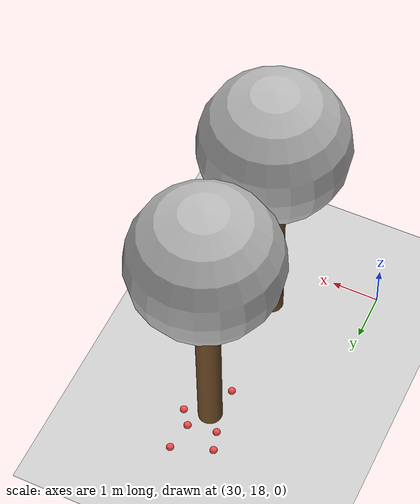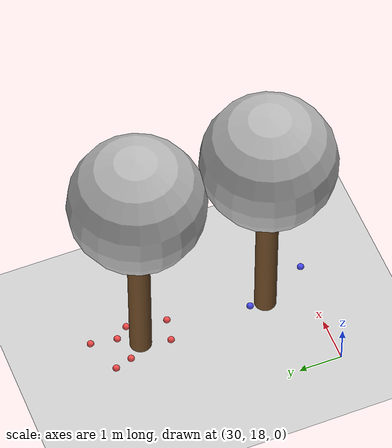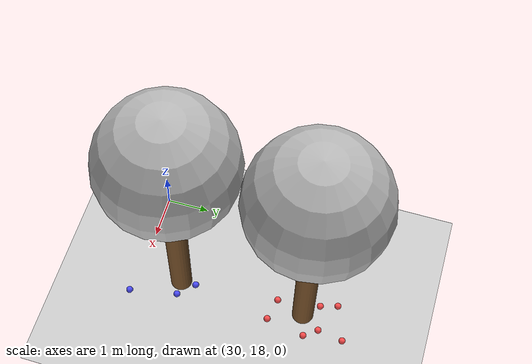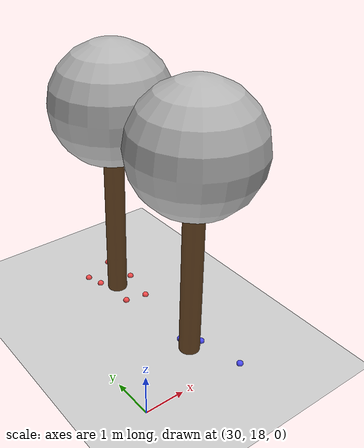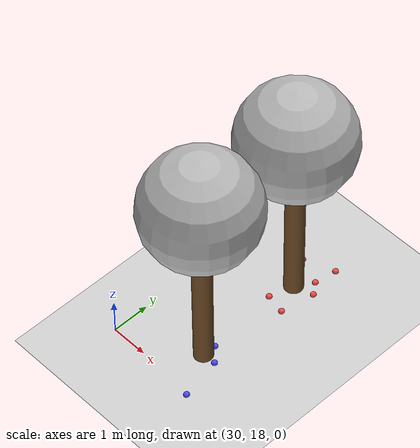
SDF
<sdf version="1.7">
 <world name="default">
  <model name="ground_plane">
   <static>1</static>
   <link name="link">
    <collision name="collision">
     <geometry><plane><normal>0 0 1</normal><size>100 100</size></plane></geometry>
     <surface>
      <contact><collide_bitmask>65535</collide_bitmask></contact>
      <friction><ode><mu>100</mu><mu2>50</mu2></ode></friction>
     </surface>
    </collision>
    <visual name="visual">
     <cast_shadows>0</cast_shadows>
     <geometry><plane><normal>0 0 1</normal><size>100 100</size></plane></geometry>
     <material>
      <script><uri>file://media/materials/scripts/gazebo.material</uri><name>Gazebo/Grey</name></script>
     </material>
    </visual>
   </link>
  </model>
  <model name="tree_simple_44">
   <static>1</static>
   <link name="link">
    <pose>0 0 0.1 0 -0 0</pose>
    <inertial>
     <mass>666</mass>
     <inertia>
      <ixx>0.0861167</ixx>
      <ixy>0</ixy>
      <ixz>0</ixz>
      <iyy>0.0861167</iyy>
      <iyz>0</iyz>
      <izz>0.0861167</izz>
     </inertia>
    </inertial>
    <collision name="collision_trunk">
     <pose>0 0 2 0 -0 0</pose>
     <geometry><cylinder><radius>0.25</radius><length>4</length></cylinder></geometry>
     <surface>
      <contact>
       <poissons_ratio>0.347</poissons_ratio>
       <elastic_modulus>8.8e+09</elastic_modulus>
       <ode><kp>100000</kp><kd>100</kd><max_vel>100</max_vel><min_depth>0.001</min_depth></ode>
      </contact>
      <friction>
       <torsional>
        <coefficient>1</coefficient>
        <use_patch_radius>0</use_patch_radius>
        <surface_radius>0.01</surface_radius>
       </torsional>
      </friction>
     </surface>
    </collision>
    <collision name="collision_treetop">
     <pose>0 0 5.2 0 -0 0</pose>
     <geometry><sphere><radius>1.5</radius></sphere></geometry>
     <surface>
      <contact>
       <poissons_ratio>0.347</poissons_ratio>
       <elastic_modulus>8.8e+09</elastic_modulus>
       <ode><kp>100000</kp><kd>100</kd><max_vel>100</max_vel><min_depth>0.001</min_depth></ode>
      </contact>
      <friction>
       <torsional>
        <coefficient>1</coefficient>
        <use_patch_radius>0</use_patch_radius>
        <surface_radius>0.01</surface_radius>
       </torsional>
      </friction>
     </surface>
    </collision>
    <visual name="trunk">
     <pose>0 0 2 0 -0 0</pose>
     <geometry><cylinder><radius>0.25</radius><length>4</length></cylinder></geometry>
     <material>
      <script>
       <uri>model://tree_simple/scripts</uri>
       <uri>model://tree_simple/materials/textures</uri>
       <name>TreeSimple/Trunk</name>
      </script>
     </material>
    </visual>
    <visual name="treetop">
     <pose>0 0 5.2 0 -0 0</pose>
     <geometry><sphere><radius>1.5</radius></sphere></geometry>
     <material>
      <script>
       <uri>model://tree_simple/scripts</uri>
       <uri>model://tree_simple/materials/textures</uri>
       <name>TreeSimple/Treetop</name>
      </script>
     </material>
    </visual>
   </link>
   <pose>32 22 -0.1 0 -0 0</pose>
  </model>
  <model name="tree_simple_53">
   <static>1</static>
   <link name="link">
    <pose>0 0 0.1 0 -0 0</pose>
    <inertial>
     <mass>666</mass>
     <inertia>
      <ixx>0.0861167</ixx>
      <ixy>0</ixy>
      <ixz>0</ixz>
      <iyy>0.0861167</iyy>
      <iyz>0</iyz>
      <izz>0.0861167</izz>
     </inertia>
    </inertial>
    <collision name="collision_trunk">
     <pose>0 0 2 0 -0 0</pose>
     <geometry><cylinder><radius>0.25</radius><length>4</length></cylinder></geometry>
     <surface>
      <contact>
       <poissons_ratio>0.347</poissons_ratio>
       <elastic_modulus>8.8e+09</elastic_modulus>
       <ode><kp>100000</kp><kd>100</kd><max_vel>100</max_vel><min_depth>0.001</min_depth></ode>
      </contact>
      <friction>
       <torsional>
        <coefficient>1</coefficient>
        <use_patch_radius>0</use_patch_radius>
        <surface_radius>0.01</surface_radius>
       </torsional>
      </friction>
     </surface>
    </collision>
    <collision name="collision_treetop">
     <pose>0 0 5.2 0 -0 0</pose>
     <geometry><sphere><radius>1.5</radius></sphere></geometry>
     <surface>
      <contact>
       <poissons_ratio>0.347</poissons_ratio>
       <elastic_modulus>8.8e+09</elastic_modulus>
       <ode><kp>100000</kp><kd>100</kd><max_vel>100</max_vel><min_depth>0.001</min_depth></ode>
      </contact>
      <friction>
       <torsional>
        <coefficient>1</coefficient>
        <use_patch_radius>0</use_patch_radius>
        <surface_radius>0.01</surface_radius>
       </torsional>
      </friction>
     </surface>
    </collision>
    <visual name="trunk">
     <pose>0 0 2 0 -0 0</pose>
     <geometry><cylinder><radius>0.25</radius><length>4</length></cylinder></geometry>
     <material>
      <script>
       <uri>model://tree_simple/scripts</uri>
       <uri>model://tree_simple/materials/textures</uri>
       <name>TreeSimple/Trunk</name>
      </script>
     </material>
    </visual>
    <visual name="treetop">
     <pose>0 0 5.2 0 -0 0</pose>
     <geometry><sphere><radius>1.5</radius></sphere></geometry>
     <material>
      <script>
       <uri>model://tree_simple/scripts</uri>
       <uri>model://tree_simple/materials/textures</uri>
       <name>TreeSimple/Treetop</name>
      </script>
     </material>
    </visual>
   </link>
   <pose>32 19 -0.1 0 -0 0</pose>
  </model>
  <model name="seed_red_203">
   <link name="link">
    <inertial>
     <mass>1</mass>
     <inertia><ixx>0.1</ixx><ixy>0</ixy><ixz>0</ixz><iyy>0.1</iyy><iyz>0</iyz><izz>0.1</izz></inertia>
    </inertial>
    <visual name="visual">
     <geometry><sphere><radius>0.08</radius></sphere></geometry>
     <material>
      <script><name>Gazebo/Grey</name><uri>file://media/materials/scripts/gazebo.material</uri></script>
      <shader type="pixel"><normal_map>__default__</normal_map></shader>
      <ambient>1 0.3 0.3 1</ambient>
      <diffuse>0.7 0.7 0.7 1</diffuse>
      <specular>0.01 0.01 0.01 1</specular>
      <emissive>0 0 0 1</emissive>
     </material>
    </visual>
    <collision name="collision">
     <geometry><sphere><radius>0.0005</radius></sphere></geometry>
     <surface>
      <friction>
       <ode><mu>1</mu><mu2>1</mu2><fdir1>0 0 0</fdir1><slip1>0</slip1><slip2>0</slip2></ode>
       <torsional>
        <coefficient>1</coefficient>
        <patch_radius>0</patch_radius>
        <surface_radius>0</surface_radius>
        <use_patch_radius>1</use_patch_radius>
        <ode><slip>0</slip></ode>
       </torsional>
      </friction>
      <bounce><restitution_coefficient>0</restitution_coefficient><threshold>1e+06</threshold></bounce>
      <contact>
       <collide_without_contact>0</collide_without_contact>
       <collide_without_contact_bitmask>1</collide_without_contact_bitmask>
       <collide_bitmask>1</collide_bitmask>
       <ode>
        <soft_cfm>0</soft_cfm>
        <soft_erp>0.2</soft_erp>
        <kp>1e+13</kp>
        <kd>1</kd>
        <max_vel>0.01</max_vel>
        <min_depth>0</min_depth>
       </ode>
       <bullet>
        <split_impulse>1</split_impulse>
        <split_impulse_penetration_threshold>-0.01</split_impulse_penetration_threshold>
        <soft_cfm>0</soft_cfm>
        <soft_erp>0.2</soft_erp>
        <kp>1e+13</kp>
        <kd>1</kd>
       </bullet>
      </contact>
     </surface>
    </collision>
   </link>
   <static>0</static>
   <pose>32.5246 22.1465 0.0005 0 -0 0</pose>
  </model>
  <model name="seed_red_204">
   <link name="link">
    <inertial>
     <mass>1</mass>
     <inertia><ixx>0.1</ixx><ixy>0</ixy><ixz>0</ixz><iyy>0.1</iyy><iyz>0</iyz><izz>0.1</izz></inertia>
    </inertial>
    <visual name="visual">
     <geometry><sphere><radius>0.08</radius></sphere></geometry>
     <material>
      <script><name>Gazebo/Grey</name><uri>file://media/materials/scripts/gazebo.material</uri></script>
      <shader type="pixel"><normal_map>__default__</normal_map></shader>
      <ambient>1 0.3 0.3 1</ambient>
      <diffuse>0.7 0.7 0.7 1</diffuse>
      <specular>0.01 0.01 0.01 1</specular>
      <emissive>0 0 0 1</emissive>
     </material>
    </visual>
    <collision name="collision">
     <geometry><sphere><radius>0.0005</radius></sphere></geometry>
     <surface>
      <friction>
       <ode><mu>1</mu><mu2>1</mu2><fdir1>0 0 0</fdir1><slip1>0</slip1><slip2>0</slip2></ode>
       <torsional>
        <coefficient>1</coefficient>
        <patch_radius>0</patch_radius>
        <surface_radius>0</surface_radius>
        <use_patch_radius>1</use_patch_radius>
        <ode><slip>0</slip></ode>
       </torsional>
      </friction>
      <bounce><restitution_coefficient>0</restitution_coefficient><threshold>1e+06</threshold></bounce>
      <contact>
       <collide_without_contact>0</collide_without_contact>
       <collide_without_contact_bitmask>1</collide_without_contact_bitmask>
       <collide_bitmask>1</collide_bitmask>
       <ode>
        <soft_cfm>0</soft_cfm>
        <soft_erp>0.2</soft_erp>
        <kp>1e+13</kp>
        <kd>1</kd>
        <max_vel>0.01</max_vel>
        <min_depth>0</min_depth>
       </ode>
       <bullet>
        <split_impulse>1</split_impulse>
        <split_impulse_penetration_threshold>-0.01</split_impulse_penetration_threshold>
        <soft_cfm>0</soft_cfm>
        <soft_erp>0.2</soft_erp>
        <kp>1e+13</kp>
        <kd>1</kd>
       </bullet>
      </contact>
     </surface>
    </collision>
   </link>
   <static>0</static>
   <pose>31.5701 22.747 0.0005 0 -0 0</pose>
  </model>
  <model name="seed_red_205">
   <link name="link">
    <inertial>
     <mass>1</mass>
     <inertia><ixx>0.1</ixx><ixy>0</ixy><ixz>0</ixz><iyy>0.1</iyy><iyz>0</iyz><izz>0.1</izz></inertia>
    </inertial>
    <visual name="visual">
     <geometry><sphere><radius>0.08</radius></sphere></geometry>
     <material>
      <script><name>Gazebo/Grey</name><uri>file://media/materials/scripts/gazebo.material</uri></script>
      <shader type="pixel"><normal_map>__default__</normal_map></shader>
      <ambient>1 0.3 0.3 1</ambient>
      <diffuse>0.7 0.7 0.7 1</diffuse>
      <specular>0.01 0.01 0.01 1</specular>
      <emissive>0 0 0 1</emissive>
     </material>
    </visual>
    <collision name="collision">
     <geometry><sphere><radius>0.0005</radius></sphere></geometry>
     <surface>
      <friction>
       <ode><mu>1</mu><mu2>1</mu2><fdir1>0 0 0</fdir1><slip1>0</slip1><slip2>0</slip2></ode>
       <torsional>
        <coefficient>1</coefficient>
        <patch_radius>0</patch_radius>
        <surface_radius>0</surface_radius>
        <use_patch_radius>1</use_patch_radius>
        <ode><slip>0</slip></ode>
       </torsional>
      </friction>
      <bounce><restitution_coefficient>0</restitution_coefficient><threshold>1e+06</threshold></bounce>
      <contact>
       <collide_without_contact>0</collide_without_contact>
       <collide_without_contact_bitmask>1</collide_without_contact_bitmask>
       <collide_bitmask>1</collide_bitmask>
       <ode>
        <soft_cfm>0</soft_cfm>
        <soft_erp>0.2</soft_erp>
        <kp>1e+13</kp>
        <kd>1</kd>
        <max_vel>0.01</max_vel>
        <min_depth>0</min_depth>
       </ode>
       <bullet>
        <split_impulse>1</split_impulse>
        <split_impulse_penetration_threshold>-0.01</split_impulse_penetration_threshold>
        <soft_cfm>0</soft_cfm>
        <soft_erp>0.2</soft_erp>
        <kp>1e+13</kp>
        <kd>1</kd>
       </bullet>
      </contact>
     </surface>
    </collision>
   </link>
   <static>0</static>
   <pose>31.6913 22.3485 0.0005 0 -0 0</pose>
  </model>
  <model name="seed_red_206">
   <link name="link">
    <inertial>
     <mass>1</mass>
     <inertia><ixx>0.1</ixx><ixy>0</ixy><ixz>0</ixz><iyy>0.1</iyy><iyz>0</iyz><izz>0.1</izz></inertia>
    </inertial>
    <visual name="visual">
     <geometry><sphere><radius>0.08</radius></sphere></geometry>
     <material>
      <script><name>Gazebo/Grey</name><uri>file://media/materials/scripts/gazebo.material</uri></script>
      <shader type="pixel"><normal_map>__default__</normal_map></shader>
      <ambient>1 0.3 0.3 1</ambient>
      <diffuse>0.7 0.7 0.7 1</diffuse>
      <specular>0.01 0.01 0.01 1</specular>
      <emissive>0 0 0 1</emissive>
     </material>
    </visual>
    <collision name="collision">
     <geometry><sphere><radius>0.0005</radius></sphere></geometry>
     <surface>
      <friction>
       <ode><mu>1</mu><mu2>1</mu2><fdir1>0 0 0</fdir1><slip1>0</slip1><slip2>0</slip2></ode>
       <torsional>
        <coefficient>1</coefficient>
        <patch_radius>0</patch_radius>
        <surface_radius>0</surface_radius>
        <use_patch_radius>1</use_patch_radius>
        <ode><slip>0</slip></ode>
       </torsional>
      </friction>
      <bounce><restitution_coefficient>0</restitution_coefficient><threshold>1e+06</threshold></bounce>
      <contact>
       <collide_without_contact>0</collide_without_contact>
       <collide_without_contact_bitmask>1</collide_without_contact_bitmask>
       <collide_bitmask>1</collide_bitmask>
       <ode>
        <soft_cfm>0</soft_cfm>
        <soft_erp>0.2</soft_erp>
        <kp>1e+13</kp>
        <kd>1</kd>
        <max_vel>0.01</max_vel>
        <min_depth>0</min_depth>
       </ode>
       <bullet>
        <split_impulse>1</split_impulse>
        <split_impulse_penetration_threshold>-0.01</split_impulse_penetration_threshold>
        <soft_cfm>0</soft_cfm>
        <soft_erp>0.2</soft_erp>
        <kp>1e+13</kp>
        <kd>1</kd>
       </bullet>
      </contact>
     </surface>
    </collision>
   </link>
   <static>0</static>
   <pose>32.3896 23.0486 0.0005 0 -0 0</pose>
  </model>
  <model name="seed_red_207">
   <link name="link">
    <inertial>
     <mass>1</mass>
     <inertia><ixx>0.1</ixx><ixy>0</ixy><ixz>0</ixz><iyy>0.1</iyy><iyz>0</iyz><izz>0.1</izz></inertia>
    </inertial>
    <visual name="visual">
     <geometry><sphere><radius>0.08</radius></sphere></geometry>
     <material>
      <script><name>Gazebo/Grey</name><uri>file://media/materials/scripts/gazebo.material</uri></script>
      <shader type="pixel"><normal_map>__default__</normal_map></shader>
      <ambient>1 0.3 0.3 1</ambient>
      <diffuse>0.7 0.7 0.7 1</diffuse>
      <specular>0.01 0.01 0.01 1</specular>
      <emissive>0 0 0 1</emissive>
     </material>
    </visual>
    <collision name="collision">
     <geometry><sphere><radius>0.0005</radius></sphere></geometry>
     <surface>
      <friction>
       <ode><mu>1</mu><mu2>1</mu2><fdir1>0 0 0</fdir1><slip1>0</slip1><slip2>0</slip2></ode>
       <torsional>
        <coefficient>1</coefficient>
        <patch_radius>0</patch_radius>
        <surface_radius>0</surface_radius>
        <use_patch_radius>1</use_patch_radius>
        <ode><slip>0</slip></ode>
       </torsional>
      </friction>
      <bounce><restitution_coefficient>0</restitution_coefficient><threshold>1e+06</threshold></bounce>
      <contact>
       <collide_without_contact>0</collide_without_contact>
       <collide_without_contact_bitmask>1</collide_without_contact_bitmask>
       <collide_bitmask>1</collide_bitmask>
       <ode>
        <soft_cfm>0</soft_cfm>
        <soft_erp>0.2</soft_erp>
        <kp>1e+13</kp>
        <kd>1</kd>
        <max_vel>0.01</max_vel>
        <min_depth>0</min_depth>
       </ode>
       <bullet>
        <split_impulse>1</split_impulse>
        <split_impulse_penetration_threshold>-0.01</split_impulse_penetration_threshold>
        <soft_cfm>0</soft_cfm>
        <soft_erp>0.2</soft_erp>
        <kp>1e+13</kp>
        <kd>1</kd>
       </bullet>
      </contact>
     </surface>
    </collision>
   </link>
   <static>0</static>
   <pose>31.8261 21.3424 0.0005 0 -0 0</pose>
  </model>
  <model name="seed_red_208">
   <link name="link">
    <inertial>
     <mass>1</mass>
     <inertia><ixx>0.1</ixx><ixy>0</ixy><ixz>0</ixz><iyy>0.1</iyy><iyz>0</iyz><izz>0.1</izz></inertia>
    </inertial>
    <visual name="visual">
     <geometry><sphere><radius>0.08</radius></sphere></geometry>
     <material>
      <script><name>Gazebo/Grey</name><uri>file://media/materials/scripts/gazebo.material</uri></script>
      <shader type="pixel"><normal_map>__default__</normal_map></shader>
      <ambient>1 0.3 0.3 1</ambient>
      <diffuse>0.7 0.7 0.7 1</diffuse>
      <specular>0.01 0.01 0.01 1</specular>
      <emissive>0 0 0 1</emissive>
     </material>
    </visual>
    <collision name="collision">
     <geometry><sphere><radius>0.0005</radius></sphere></geometry>
     <surface>
      <friction>
       <ode><mu>1</mu><mu2>1</mu2><fdir1>0 0 0</fdir1><slip1>0</slip1><slip2>0</slip2></ode>
       <torsional>
        <coefficient>1</coefficient>
        <patch_radius>0</patch_radius>
        <surface_radius>0</surface_radius>
        <use_patch_radius>1</use_patch_radius>
        <ode><slip>0</slip></ode>
       </torsional>
      </friction>
      <bounce><restitution_coefficient>0</restitution_coefficient><threshold>1e+06</threshold></bounce>
      <contact>
       <collide_without_contact>0</collide_without_contact>
       <collide_without_contact_bitmask>1</collide_without_contact_bitmask>
       <collide_bitmask>1</collide_bitmask>
       <ode>
        <soft_cfm>0</soft_cfm>
        <soft_erp>0.2</soft_erp>
        <kp>1e+13</kp>
        <kd>1</kd>
        <max_vel>0.01</max_vel>
        <min_depth>0</min_depth>
       </ode>
       <bullet>
        <split_impulse>1</split_impulse>
        <split_impulse_penetration_threshold>-0.01</split_impulse_penetration_threshold>
        <soft_cfm>0</soft_cfm>
        <soft_erp>0.2</soft_erp>
        <kp>1e+13</kp>
        <kd>1</kd>
       </bullet>
      </contact>
     </surface>
    </collision>
   </link>
   <static>0</static>
   <pose>32.2938 22.448 0.0005 0 -0 0</pose>
  </model>
  <model name="seed_red_209">
   <link name="link">
    <inertial>
     <mass>1</mass>
     <inertia><ixx>0.1</ixx><ixy>0</ixy><ixz>0</ixz><iyy>0.1</iyy><iyz>0</iyz><izz>0.1</izz></inertia>
    </inertial>
    <visual name="visual">
     <geometry><sphere><radius>0.08</radius></sphere></geometry>
     <material>
      <script><name>Gazebo/Grey</name><uri>file://media/materials/scripts/gazebo.material</uri></script>
      <shader type="pixel"><normal_map>__default__</normal_map></shader>
      <ambient>1 0.3 0.3 1</ambient>
      <diffuse>0.7 0.7 0.7 1</diffuse>
      <specular>0.01 0.01 0.01 1</specular>
      <emissive>0 0 0 1</emissive>
     </material>
    </visual>
    <collision name="collision">
     <geometry><sphere><radius>0.0005</radius></sphere></geometry>
     <surface>
      <friction>
       <ode><mu>1</mu><mu2>1</mu2><fdir1>0 0 0</fdir1><slip1>0</slip1><slip2>0</slip2></ode>
       <torsional>
        <coefficient>1</coefficient>
        <patch_radius>0</patch_radius>
        <surface_radius>0</surface_radius>
        <use_patch_radius>1</use_patch_radius>
        <ode><slip>0</slip></ode>
       </torsional>
      </friction>
      <bounce><restitution_coefficient>0</restitution_coefficient><threshold>1e+06</threshold></bounce>
      <contact>
       <collide_without_contact>0</collide_without_contact>
       <collide_without_contact_bitmask>1</collide_without_contact_bitmask>
       <collide_bitmask>1</collide_bitmask>
       <ode>
        <soft_cfm>0</soft_cfm>
        <soft_erp>0.2</soft_erp>
        <kp>1e+13</kp>
        <kd>1</kd>
        <max_vel>0.01</max_vel>
        <min_depth>0</min_depth>
       </ode>
       <bullet>
        <split_impulse>1</split_impulse>
        <split_impulse_penetration_threshold>-0.01</split_impulse_penetration_threshold>
        <soft_cfm>0</soft_cfm>
        <soft_erp>0.2</soft_erp>
        <kp>1e+13</kp>
        <kd>1</kd>
       </bullet>
      </contact>
     </surface>
    </collision>
   </link>
   <static>0</static>
   <pose>32.3591 21.2338 0.0005 0 -0 0</pose>
  </model>
  <model name="seed_blue_110">
   <link name="link">
    <inertial>
     <mass>1</mass>
     <inertia><ixx>0.1</ixx><ixy>0</ixy><ixz>0</ixz><iyy>0.1</iyy><iyz>0</iyz><izz>0.1</izz></inertia>
    </inertial>
    <visual name="visual">
     <geometry><sphere><radius>0.08</radius></sphere></geometry>
     <material>
      <script><name>Gazebo/Grey</name><uri>file://media/materials/scripts/gazebo.material</uri></script>
      <shader type="pixel"><normal_map>__default__</normal_map></shader>
      <ambient>0.3 0.3 1 1</ambient>
      <diffuse>0.7 0.7 0.7 1</diffuse>
      <specular>0.01 0.01 0.01 1</specular>
      <emissive>0 0 0 1</emissive>
     </material>
    </visual>
    <collision name="collision">
     <geometry><sphere><radius>0.0005</radius></sphere></geometry>
     <surface>
      <friction>
       <ode><mu>1</mu><mu2>1</mu2><fdir1>0 0 0</fdir1><slip1>0</slip1><slip2>0</slip2></ode>
       <torsional>
        <coefficient>1</coefficient>
        <patch_radius>0</patch_radius>
        <surface_radius>0</surface_radius>
        <use_patch_radius>1</use_patch_radius>
        <ode><slip>0</slip></ode>
       </torsional>
      </friction>
      <bounce><restitution_coefficient>0</restitution_coefficient><threshold>1e+06</threshold></bounce>
      <contact>
       <collide_without_contact>0</collide_without_contact>
       <collide_without_contact_bitmask>1</collide_without_contact_bitmask>
       <collide_bitmask>1</collide_bitmask>
       <ode>
        <soft_cfm>0</soft_cfm>
        <soft_erp>0.2</soft_erp>
        <kp>1e+13</kp>
        <kd>1</kd>
        <max_vel>0.01</max_vel>
        <min_depth>0</min_depth>
       </ode>
       <bullet>
        <split_impulse>1</split_impulse>
        <split_impulse_penetration_threshold>-0.01</split_impulse_penetration_threshold>
        <soft_cfm>0</soft_cfm>
        <soft_erp>0.2</soft_erp>
        <kp>1e+13</kp>
        <kd>1</kd>
       </bullet>
      </contact>
     </surface>
    </collision>
   </link>
   <static>0</static>
   <pose>32.0164 19.3576 0.0005 0 -0 0</pose>
  </model>
  <model name="seed_blue_113">
   <link name="link">
    <inertial>
     <mass>1</mass>
     <inertia><ixx>0.1</ixx><ixy>0</ixy><ixz>0</ixz><iyy>0.1</iyy><iyz>0</iyz><izz>0.1</izz></inertia>
    </inertial>
    <visual name="visual">
     <geometry><sphere><radius>0.08</radius></sphere></geometry>
     <material>
      <script><name>Gazebo/Grey</name><uri>file://media/materials/scripts/gazebo.material</uri></script>
      <shader type="pixel"><normal_map>__default__</normal_map></shader>
      <ambient>0.3 0.3 1 1</ambient>
      <diffuse>0.7 0.7 0.7 1</diffuse>
      <specular>0.01 0.01 0.01 1</specular>
      <emissive>0 0 0 1</emissive>
     </material>
    </visual>
    <collision name="collision">
     <geometry><sphere><radius>0.0005</radius></sphere></geometry>
     <surface>
      <friction>
       <ode><mu>1</mu><mu2>1</mu2><fdir1>0 0 0</fdir1><slip1>0</slip1><slip2>0</slip2></ode>
       <torsional>
        <coefficient>1</coefficient>
        <patch_radius>0</patch_radius>
        <surface_radius>0</surface_radius>
        <use_patch_radius>1</use_patch_radius>
        <ode><slip>0</slip></ode>
       </torsional>
      </friction>
      <bounce><restitution_coefficient>0</restitution_coefficient><threshold>1e+06</threshold></bounce>
      <contact>
       <collide_without_contact>0</collide_without_contact>
       <collide_without_contact_bitmask>1</collide_without_contact_bitmask>
       <collide_bitmask>1</collide_bitmask>
       <ode>
        <soft_cfm>0</soft_cfm>
        <soft_erp>0.2</soft_erp>
        <kp>1e+13</kp>
        <kd>1</kd>
        <max_vel>0.01</max_vel>
        <min_depth>0</min_depth>
       </ode>
       <bullet>
        <split_impulse>1</split_impulse>
        <split_impulse_penetration_threshold>-0.01</split_impulse_penetration_threshold>
        <soft_cfm>0</soft_cfm>
        <soft_erp>0.2</soft_erp>
        <kp>1e+13</kp>
        <kd>1</kd>
       </bullet>
      </contact>
     </surface>
    </collision>
   </link>
   <static>0</static>
   <pose>32.5892 17.8895 0.0005 0 -0 0</pose>
  </model>
  <model name="seed_blue_114">
   <link name="link">
    <inertial>
     <mass>1</mass>
     <inertia><ixx>0.1</ixx><ixy>0</ixy><ixz>0</ixz><iyy>0.1</iyy><iyz>0</iyz><izz>0.1</izz></inertia>
    </inertial>
    <visual name="visual">
     <geometry><sphere><radius>0.08</radius></sphere></geometry>
     <material>
      <script><name>Gazebo/Grey</name><uri>file://media/materials/scripts/gazebo.material</uri></script>
      <shader type="pixel"><normal_map>__default__</normal_map></shader>
      <ambient>0.3 0.3 1 1</ambient>
      <diffuse>0.7 0.7 0.7 1</diffuse>
      <specular>0.01 0.01 0.01 1</specular>
      <emissive>0 0 0 1</emissive>
     </material>
    </visual>
    <collision name="collision">
     <geometry><sphere><radius>0.0005</radius></sphere></geometry>
     <surface>
      <friction>
       <ode><mu>1</mu><mu2>1</mu2><fdir1>0 0 0</fdir1><slip1>0</slip1><slip2>0</slip2></ode>
       <torsional>
        <coefficient>1</coefficient>
        <patch_radius>0</patch_radius>
        <surface_radius>0</surface_radius>
        <use_patch_radius>1</use_patch_radius>
        <ode><slip>0</slip></ode>
       </torsional>
      </friction>
      <bounce><restitution_coefficient>0</restitution_coefficient><threshold>1e+06</threshold></bounce>
      <contact>
       <collide_without_contact>0</collide_without_contact>
       <collide_without_contact_bitmask>1</collide_without_contact_bitmask>
       <collide_bitmask>1</collide_bitmask>
       <ode>
        <soft_cfm>0</soft_cfm>
        <soft_erp>0.2</soft_erp>
        <kp>1e+13</kp>
        <kd>1</kd>
        <max_vel>0.01</max_vel>
        <min_depth>0</min_depth>
       </ode>
       <bullet>
        <split_impulse>1</split_impulse>
        <split_impulse_penetration_threshold>-0.01</split_impulse_penetration_threshold>
        <soft_cfm>0</soft_cfm>
        <soft_erp>0.2</soft_erp>
        <kp>1e+13</kp>
        <kd>1</kd>
       </bullet>
      </contact>
     </surface>
    </collision>
   </link>
   <static>0</static>
   <pose>32.3688 19.0042 0.0005 0 -0 0</pose>
  </model>
 </world>
</sdf>
